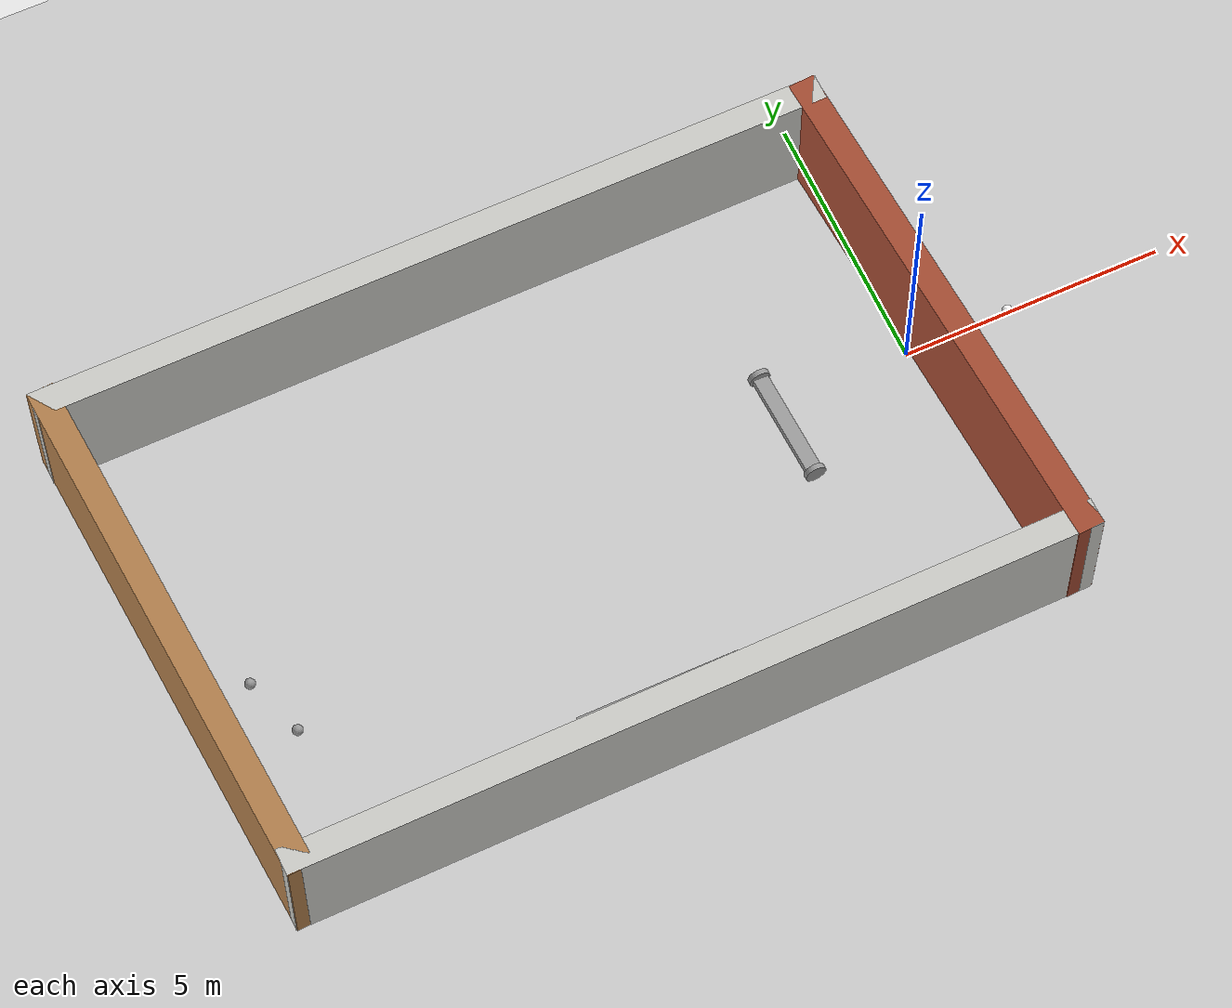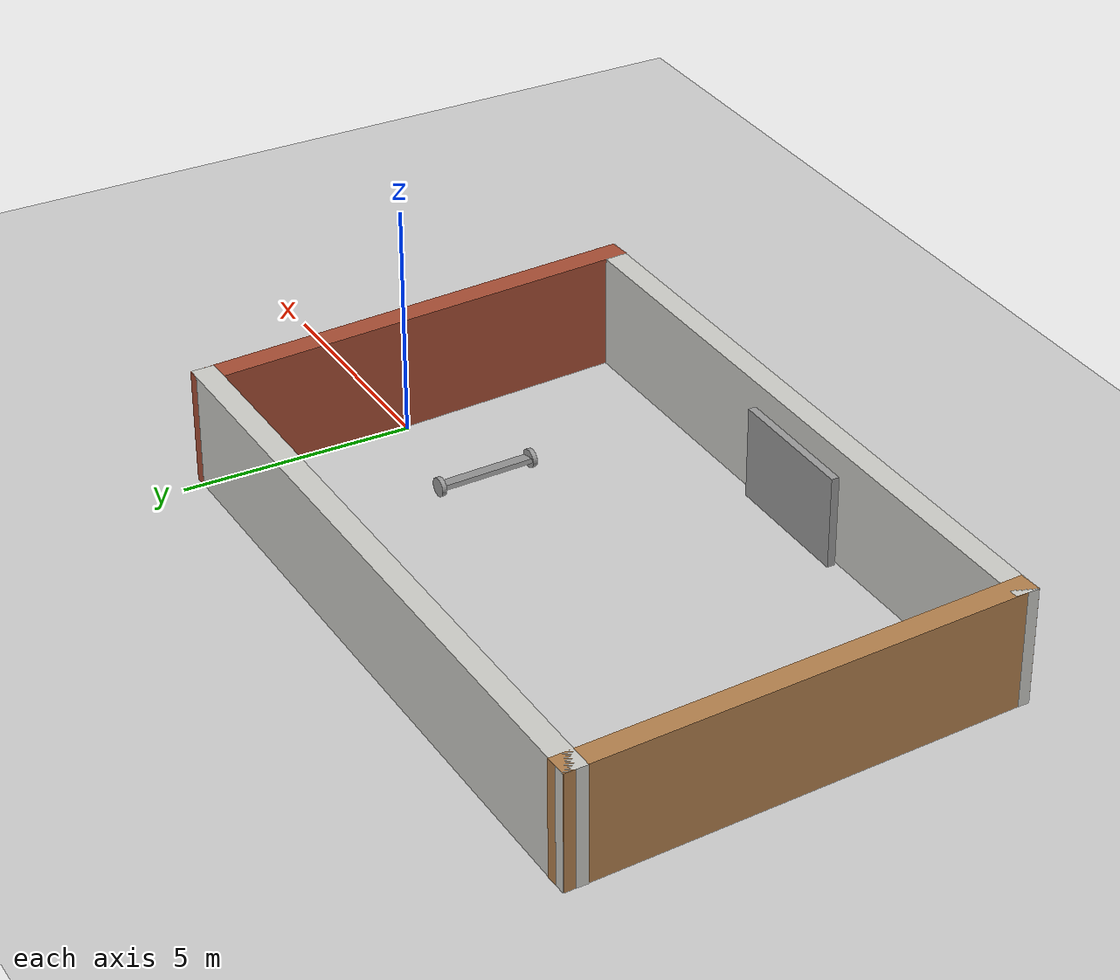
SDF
<sdf version="1.7">
 <world name="default">
  <light name="sun" type="directional">
   <pose>0 0 10 0 -0 0</pose>
   <diffuse>0.8 0.8 0.8 1</diffuse>
   <specular>0.2 0.2 0.2 1</specular>
   <attenuation>
    <range>1000</range>
    <constant>0.9</constant>
    <linear>0.01</linear>
    <quadratic>0.001</quadratic>
   </attenuation>
   <direction>-0.5 0.1 -0.9</direction>
   <spot><inner_angle>0</inner_angle><outer_angle>0</outer_angle><falloff>0</falloff></spot>
  </light>
  <plugin name="hello_plugin" filename="libhello.so"/>
  <model name="ground_plane">
   <static>1</static>
   <link name="link">
    <collision name="collision">
     <geometry><plane><normal>0 0 1</normal><size>100 100</size></plane></geometry>
     <surface>
      <contact><collide_bitmask>65535</collide_bitmask></contact>
      <friction><ode><mu>100</mu><mu2>50</mu2></ode></friction>
     </surface>
    </collision>
    <visual name="visual">
     <cast_shadows>0</cast_shadows>
     <geometry><plane><normal>0 0 1</normal><size>100 100</size></plane></geometry>
     <material>
      <script><uri>file://media/materials/scripts/gazebo.material</uri><name>Gazebo/Grey</name></script>
     </material>
    </visual>
   </link>
  </model>
  <gravity>0 0 -9.8</gravity>
  <magnetic_field>6e-06 2.3e-05 -4.2e-05</magnetic_field>
  <atmosphere type="adiabatic"/>
  <physics type="ode">
   <max_step_size>0.001</max_step_size>
   <real_time_factor>1</real_time_factor>
   <real_time_update_rate>1000</real_time_update_rate>
  </physics>
  <scene><ambient>0.4 0.4 0.4 1</ambient><background>0.7 0.7 0.7 1</background><shadows>1</shadows></scene>
  <spherical_coordinates>
   <surface_model>EARTH_WGS84</surface_model>
   <latitude_deg>0</latitude_deg>
   <longitude_deg>0</longitude_deg>
   <elevation>0</elevation>
   <heading_deg>0</heading_deg>
  </spherical_coordinates>
  <model name="building">
   <pose>-4.23894 -0.48774 0 0 -0 0</pose>
   <link name="Door_0">
    <collision name="Door_0_Collision">
     <geometry><box><size>3 0.17 2</size></box></geometry>
     <pose>0 0 1 0 -0 0</pose>
    </collision>
    <visual name="Door_0_Visual">
     <pose>0 0 1 0 -0 0</pose>
     <geometry><box><size>3 0.17 2</size></box></geometry>
     <material>
      <script><uri>file://media/materials/scripts/gazebo.material</uri><name>Gazebo/Grey</name></script>
     </material>
    </visual>
    <pose>-2.85103 -4.35705 0 0 -0 0</pose>
   </link>
   <link name="Wall_0">
    <collision name="Wall_0_Collision">
     <geometry><box><size>10.0149 0.5 2.5</size></box></geometry>
     <pose>0 0 1.25 0 -0 0</pose>
    </collision>
    <visual name="Wall_0_Visual">
     <pose>0 0 1.25 0 -0 0</pose>
     <geometry><box><size>10.0149 0.5 2.5</size></box></geometry>
     <material>
      <script><uri>file://media/materials/scripts/gazebo.material</uri><name>Gazebo/Wood</name></script>
      <ambient>0.996078 0.47451 0.0196078 1</ambient>
     </material>
     <meta><layer>0</layer></meta>
    </visual>
    <pose>-9.92047 -0.048023 0 0 -0 1.63485</pose>
   </link>
   <link name="Wall_1">
    <collision name="Wall_1_Collision">
     <geometry><box><size>15 0.5 2.5</size></box></geometry>
     <pose>0 0 1.25 0 -0 0</pose>
    </collision>
    <visual name="Wall_1_Visual">
     <pose>0 0 1.25 0 -0 0</pose>
     <geometry><box><size>15 0.5 2.5</size></box></geometry>
     <material>
      <script><uri>file://media/materials/scripts/gazebo.material</uri><name>Gazebo/CeilingTiled</name></script>
      <ambient>0.996078 0.47451 0.0196078 1</ambient>
     </material>
     <meta><layer>0</layer></meta>
    </visual>
    <pose>-2.97516 4.74766 0 0 -0 0.006622</pose>
   </link>
   <link name="Wall_2">
    <collision name="Wall_2_Collision">
     <geometry><box><size>10 0.5 2.5</size></box></geometry>
     <pose>0 0 1.25 0 -0 0</pose>
    </collision>
    <visual name="Wall_2_Visual">
     <pose>0 0 1.25 0 -0 0</pose>
     <geometry><box><size>10 0.5 2.5</size></box></geometry>
     <material>
      <script><uri>file://media/materials/scripts/gazebo.material</uri><name>Gazebo/Bricks</name></script>
      <ambient>0.996078 0.47451 0.0196078 1</ambient>
     </material>
     <meta><layer>0</layer></meta>
    </visual>
    <pose>4.57916 0.055441 0 0 -0 -1.50665</pose>
   </link>
   <link name="Wall_3">
    <collision name="Wall_3_Collision">
     <geometry><box><size>15 0.5 2.5</size></box></geometry>
     <pose>0 0 1.25 0 -0 0</pose>
    </collision>
    <visual name="Wall_3_Visual">
     <pose>0 0 1.25 0 -0 0</pose>
     <geometry><box><size>15 0.5 2.5</size></box></geometry>
     <material>
      <script><uri>file://media/materials/scripts/gazebo.material</uri><name>Gazebo/CeilingTiled</name></script>
      <ambient>0.435294 0.796078 0.67451 1</ambient>
     </material>
     <meta><layer>0</layer></meta>
    </visual>
    <pose>-2.36615 -4.74024 0 0 -0 -3.13394</pose>
   </link>
   <static>1</static>
  </model>
  <model name="robot">
   <link name="link_0">
    <inertial>
     <mass>1</mass>
     <inertia>
      <ixx>0.166667</ixx>
      <ixy>0</ixy>
      <ixz>0</ixz>
      <iyy>0.166667</iyy>
      <iyz>0</iyz>
      <izz>0.166667</izz>
     </inertia>
    </inertial>
    <visual name="visual">
     <geometry><box><size>0.3 2 0.1</size></box></geometry>
     <material>
      <lighting>1</lighting>
      <script><uri>file://media/materials/scripts/gazebo.material</uri><name>Gazebo/Grey</name></script>
      <shader type="pixel"><normal_map>__default__</normal_map></shader>
      <ambient>0.3 0.3 0.3 1</ambient>
      <diffuse>0.7 0.7 0.7 1</diffuse>
      <specular>0.01 0.01 0.01 1</specular>
      <emissive>0 0 0 1</emissive>
     </material>
    </visual>
    <collision name="collision">
     <geometry><box><size>0.3 2 0.1</size></box></geometry>
     <surface>
      <friction>
       <ode><mu>1</mu><mu2>1</mu2><fdir1>0 0 0</fdir1><slip1>0</slip1><slip2>0</slip2></ode>
       <torsional>
        <coefficient>1</coefficient>
        <patch_radius>0</patch_radius>
        <surface_radius>0</surface_radius>
        <use_patch_radius>1</use_patch_radius>
        <ode><slip>0</slip></ode>
       </torsional>
      </friction>
      <bounce><restitution_coefficient>0</restitution_coefficient><threshold>1e+06</threshold></bounce>
      <contact>
       <collide_without_contact>0</collide_without_contact>
       <collide_without_contact_bitmask>1</collide_without_contact_bitmask>
       <collide_bitmask>1</collide_bitmask>
       <ode>
        <soft_cfm>0</soft_cfm>
        <soft_erp>0.2</soft_erp>
        <kp>1e+13</kp>
        <kd>1</kd>
        <max_vel>0.01</max_vel>
        <min_depth>0</min_depth>
       </ode>
       <bullet>
        <split_impulse>1</split_impulse>
        <split_impulse_penetration_threshold>-0.01</split_impulse_penetration_threshold>
        <soft_cfm>0</soft_cfm>
        <soft_erp>0.2</soft_erp>
        <kp>1e+13</kp>
        <kd>1</kd>
       </bullet>
      </contact>
     </surface>
    </collision>
   </link>
   <link name="link_1">
    <inertial>
     <mass>1</mass>
     <inertia><ixx>0.145833</ixx><ixy>0</ixy><ixz>0</ixz><iyy>0.145833</iyy><iyz>0</iyz><izz>0.125</izz></inertia>
    </inertial>
    <pose>0 -1.05002 0 1.5707 -0 0</pose>
    <visual name="visual">
     <geometry><cylinder><radius>0.2</radius><length>0.1</length></cylinder></geometry>
     <material>
      <lighting>1</lighting>
      <script><uri>file://media/materials/scripts/gazebo.material</uri><name>Gazebo/Grey</name></script>
      <shader type="pixel"><normal_map>__default__</normal_map></shader>
      <ambient>0.3 0.3 0.3 1</ambient>
      <diffuse>0.7 0.7 0.7 1</diffuse>
      <specular>0.01 0.01 0.01 1</specular>
      <emissive>0 0 0 1</emissive>
     </material>
    </visual>
    <collision name="collision">
     <geometry><cylinder><radius>0.2</radius><length>0.1</length></cylinder></geometry>
     <surface>
      <friction>
       <ode><mu>1</mu><mu2>1</mu2><fdir1>0 0 0</fdir1><slip1>0</slip1><slip2>0</slip2></ode>
       <torsional>
        <coefficient>1</coefficient>
        <patch_radius>0</patch_radius>
        <surface_radius>0</surface_radius>
        <use_patch_radius>1</use_patch_radius>
        <ode><slip>0</slip></ode>
       </torsional>
      </friction>
      <bounce><restitution_coefficient>0</restitution_coefficient><threshold>1e+06</threshold></bounce>
      <contact>
       <collide_without_contact>0</collide_without_contact>
       <collide_without_contact_bitmask>1</collide_without_contact_bitmask>
       <collide_bitmask>1</collide_bitmask>
       <ode>
        <soft_cfm>0</soft_cfm>
        <soft_erp>0.2</soft_erp>
        <kp>1e+13</kp>
        <kd>1</kd>
        <max_vel>0.01</max_vel>
        <min_depth>0</min_depth>
       </ode>
       <bullet>
        <split_impulse>1</split_impulse>
        <split_impulse_penetration_threshold>-0.01</split_impulse_penetration_threshold>
        <soft_cfm>0</soft_cfm>
        <soft_erp>0.2</soft_erp>
        <kp>1e+13</kp>
        <kd>1</kd>
       </bullet>
      </contact>
     </surface>
    </collision>
   </link>
   <link name="link_1_clone">
    <inertial>
     <mass>1</mass>
     <inertia><ixx>0.145833</ixx><ixy>0</ixy><ixz>0</ixz><iyy>0.145833</iyy><iyz>0</iyz><izz>0.125</izz></inertia>
    </inertial>
    <pose>0 1.05002 0 1.5707 -0 0</pose>
    <visual name="visual">
     <geometry><cylinder><radius>0.2</radius><length>0.1</length></cylinder></geometry>
     <material>
      <lighting>1</lighting>
      <script><uri>file://media/materials/scripts/gazebo.material</uri><name>Gazebo/Grey</name></script>
      <shader type="pixel"><normal_map>__default__</normal_map></shader>
      <ambient>0.3 0.3 0.3 1</ambient>
      <diffuse>0.7 0.7 0.7 1</diffuse>
      <specular>0.01 0.01 0.01 1</specular>
      <emissive>0 0 0 1</emissive>
     </material>
    </visual>
    <collision name="collision">
     <geometry><cylinder><radius>0.2</radius><length>0.1</length></cylinder></geometry>
     <surface>
      <friction>
       <ode><mu>1</mu><mu2>1</mu2><fdir1>0 0 0</fdir1><slip1>0</slip1><slip2>0</slip2></ode>
       <torsional>
        <coefficient>1</coefficient>
        <patch_radius>0</patch_radius>
        <surface_radius>0</surface_radius>
        <use_patch_radius>1</use_patch_radius>
        <ode><slip>0</slip></ode>
       </torsional>
      </friction>
      <bounce><restitution_coefficient>0</restitution_coefficient><threshold>1e+06</threshold></bounce>
      <contact>
       <collide_without_contact>0</collide_without_contact>
       <collide_without_contact_bitmask>1</collide_without_contact_bitmask>
       <collide_bitmask>1</collide_bitmask>
       <ode>
        <soft_cfm>0</soft_cfm>
        <soft_erp>0.2</soft_erp>
        <kp>1e+13</kp>
        <kd>1</kd>
        <max_vel>0.01</max_vel>
        <min_depth>0</min_depth>
       </ode>
       <bullet>
        <split_impulse>1</split_impulse>
        <split_impulse_penetration_threshold>-0.01</split_impulse_penetration_threshold>
        <soft_cfm>0</soft_cfm>
        <soft_erp>0.2</soft_erp>
        <kp>1e+13</kp>
        <kd>1</kd>
       </bullet>
      </contact>
     </surface>
    </collision>
   </link>
   <joint name="link_0_JOINT_0" type="revolute">
    <parent>link_0</parent>
    <child>link_1</child>
    <axis>
     <xyz>0 0 1</xyz>
     <limit>
      <lower>-1.79769e+308</lower>
      <upper>1.79769e+308</upper>
      <effort>-1</effort>
      <velocity>-1</velocity>
     </limit>
     <dynamics>
      <spring_reference>0</spring_reference>
      <spring_stiffness>0</spring_stiffness>
      <damping>0</damping>
     </dynamics>
    </axis>
    <physics>
     <ode><limit><cfm>0</cfm><erp>0.2</erp></limit><suspension><cfm>0</cfm><erp>0.2</erp></suspension></ode>
    </physics>
   </joint>
   <joint name="link_0_JOINT_1" type="revolute">
    <parent>link_0</parent>
    <child>link_1_clone</child>
    <axis>
     <xyz>0 0 1</xyz>
     <limit>
      <lower>-1.79769e+308</lower>
      <upper>1.79769e+308</upper>
      <effort>-1</effort>
      <velocity>-1</velocity>
     </limit>
     <dynamics>
      <spring_reference>0</spring_reference>
      <spring_stiffness>0</spring_stiffness>
      <damping>0</damping>
     </dynamics>
    </axis>
    <physics>
     <ode><limit><cfm>0</cfm><erp>0.2</erp></limit><suspension><cfm>0</cfm><erp>0.2</erp></suspension></ode>
    </physics>
   </joint>
   <static>0</static>
   <pose>-2.58948 -0.465309 0.200005 -0 0.15294 0.041405</pose>
  </model>
  <model name="my_ball">
   <link name="link_0">
    <inertial>
     <mass>1</mass>
     <inertia><ixx>0.1</ixx><ixy>0</ixy><ixz>0</ixz><iyy>0.1</iyy><iyz>0</iyz><izz>0.1</izz></inertia>
    </inertial>
    <visual name="visual">
     <geometry><sphere><radius>0.1</radius></sphere></geometry>
     <material>
      <lighting>1</lighting>
      <script><uri>file://media/materials/scripts/gazebo.material</uri><name>Gazebo/Grey</name></script>
      <shader type="pixel"><normal_map>__default__</normal_map></shader>
      <ambient>1 1 1 1</ambient>
      <diffuse>1 1 1 1</diffuse>
      <specular>1 1 1 1</specular>
      <emissive>1 1 1 1</emissive>
     </material>
    </visual>
    <collision name="collision">
     <geometry><sphere><radius>0.1</radius></sphere></geometry>
     <surface>
      <friction>
       <ode><mu>1</mu><mu2>1</mu2><fdir1>0 0 0</fdir1><slip1>0</slip1><slip2>0</slip2></ode>
       <torsional>
        <coefficient>1</coefficient>
        <patch_radius>0</patch_radius>
        <surface_radius>0</surface_radius>
        <use_patch_radius>1</use_patch_radius>
        <ode><slip>0</slip></ode>
       </torsional>
      </friction>
      <bounce><restitution_coefficient>0</restitution_coefficient><threshold>1e+06</threshold></bounce>
      <contact>
       <collide_without_contact>0</collide_without_contact>
       <collide_without_contact_bitmask>1</collide_without_contact_bitmask>
       <collide_bitmask>1</collide_bitmask>
       <ode>
        <soft_cfm>0</soft_cfm>
        <soft_erp>0.2</soft_erp>
        <kp>1e+13</kp>
        <kd>1</kd>
        <max_vel>0.01</max_vel>
        <min_depth>0</min_depth>
       </ode>
       <bullet>
        <split_impulse>1</split_impulse>
        <split_impulse_penetration_threshold>-0.01</split_impulse_penetration_threshold>
        <soft_cfm>0</soft_cfm>
        <soft_erp>0.2</soft_erp>
        <kp>1e+13</kp>
        <kd>1</kd>
       </bullet>
      </contact>
     </surface>
    </collision>
   </link>
   <static>0</static>
   <pose>-13.0781 -1.07633 0.1 0 -0 0</pose>
  </model>
  <model name="my_ball_0">
   <link name="link_0">
    <inertial>
     <mass>1</mass>
     <inertia><ixx>0.1</ixx><ixy>0</ixy><ixz>0</ixz><iyy>0.1</iyy><iyz>0</iyz><izz>0.1</izz></inertia>
    </inertial>
    <visual name="visual">
     <geometry><sphere><radius>0.1</radius></sphere></geometry>
     <material>
      <lighting>1</lighting>
      <script><uri>file://media/materials/scripts/gazebo.material</uri><name>Gazebo/Grey</name></script>
      <shader type="pixel"><normal_map>__default__</normal_map></shader>
      <ambient>1 1 1 1</ambient>
      <diffuse>1 1 1 1</diffuse>
      <specular>1 1 1 1</specular>
      <emissive>1 1 1 1</emissive>
     </material>
    </visual>
    <collision name="collision">
     <geometry><sphere><radius>0.1</radius></sphere></geometry>
     <surface>
      <friction>
       <ode><mu>1</mu><mu2>1</mu2><fdir1>0 0 0</fdir1><slip1>0</slip1><slip2>0</slip2></ode>
       <torsional>
        <coefficient>1</coefficient>
        <patch_radius>0</patch_radius>
        <surface_radius>0</surface_radius>
        <use_patch_radius>1</use_patch_radius>
        <ode><slip>0</slip></ode>
       </torsional>
      </friction>
      <bounce><restitution_coefficient>0</restitution_coefficient><threshold>1e+06</threshold></bounce>
      <contact>
       <collide_without_contact>0</collide_without_contact>
       <collide_without_contact_bitmask>1</collide_without_contact_bitmask>
       <collide_bitmask>1</collide_bitmask>
       <ode>
        <soft_cfm>0</soft_cfm>
        <soft_erp>0.2</soft_erp>
        <kp>1e+13</kp>
        <kd>1</kd>
        <max_vel>0.01</max_vel>
        <min_depth>0</min_depth>
       </ode>
       <bullet>
        <split_impulse>1</split_impulse>
        <split_impulse_penetration_threshold>-0.01</split_impulse_penetration_threshold>
        <soft_cfm>0</soft_cfm>
        <soft_erp>0.2</soft_erp>
        <kp>1e+13</kp>
        <kd>1</kd>
       </bullet>
      </contact>
     </surface>
    </collision>
   </link>
   <static>0</static>
   <pose>-12.672 -2.21487 0.1 0 -0 0</pose>
  </model>
  <model name="white_ball">
   <link name="link">
    <inertial>
     <mass>0.1</mass>
     <inertia><ixx>0.0001</ixx><iyy>0.0001</iyy><izz>0.0001</izz><ixy>0</ixy><ixz>0</ixz><iyz>0</iyz></inertia>
    </inertial>
    <collision name="collision"><geometry><sphere><radius>0.1</radius></sphere></geometry></collision>
    <visual name="visual">
     <geometry><sphere><radius>0.1</radius></sphere></geometry>
     <material><ambient>1 1 1 1</ambient><diffuse>1 1 1 1</diffuse></material>
    </visual>
   </link>
   <static>0</static>
   <pose>2 0 0.1 0 -0 0</pose>
  </model>
 </world>
</sdf>
